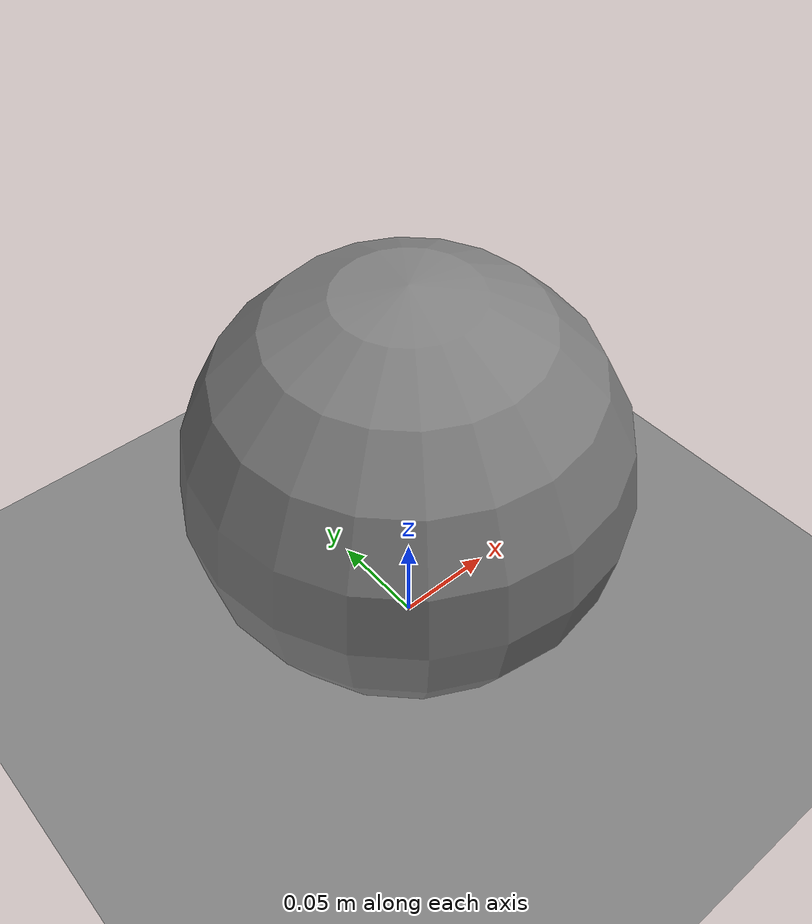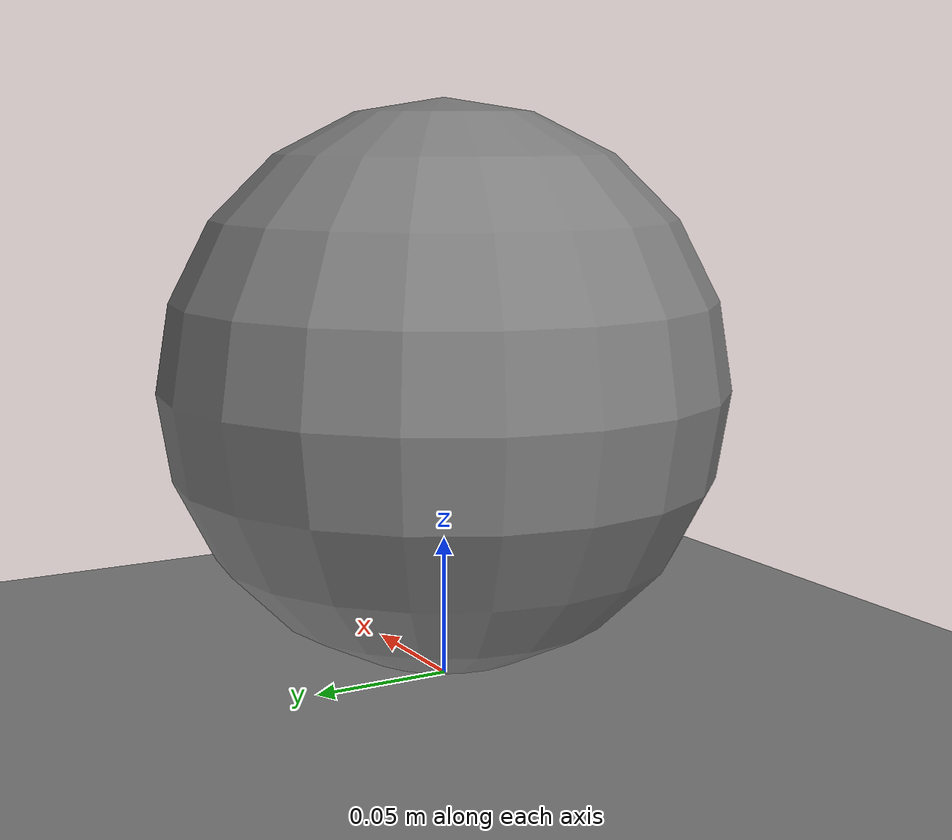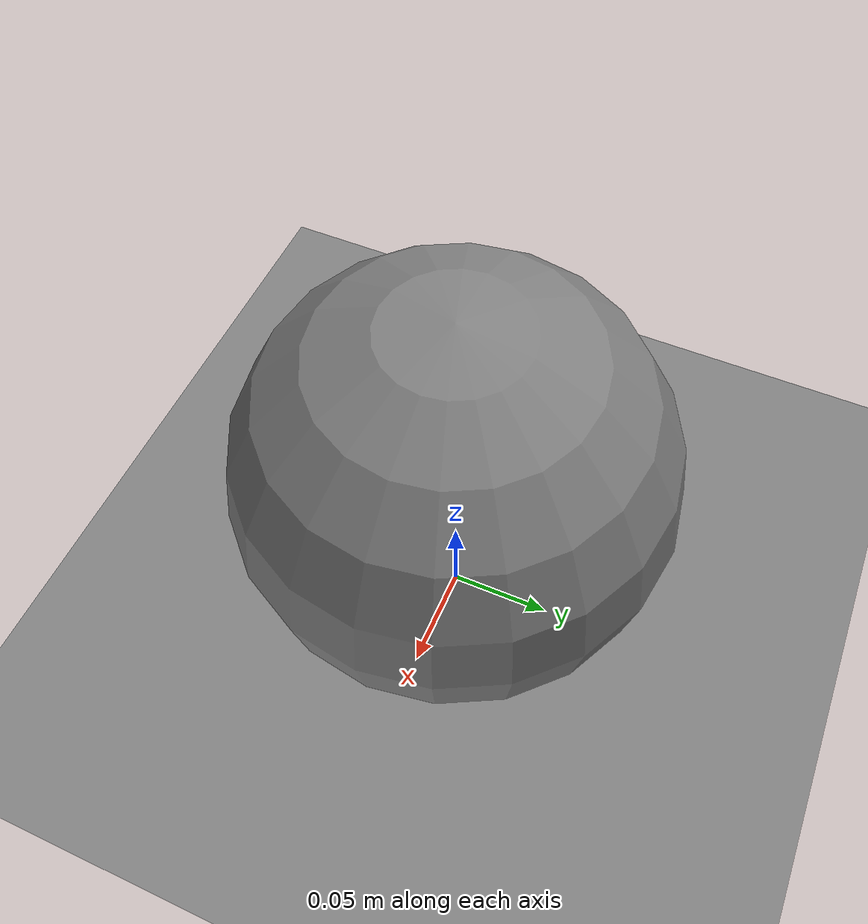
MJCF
<mujoco model="s31_k_zero">
            <option gravity="0 0 -9.81" timestep="0.002" solver="Newton"
                    cone="elliptic"/>
            <worldbody>
                <geom name="floor" type="plane" size="5 5 0.1"/>
                <body name="ball" pos="0 0 0.105">
                    <joint type="free"/>
                    <geom name="sphere" type="sphere" size="0.1" mass="1.0"/>
                </body>
            </worldbody>
            <contact>
                <pair geom1="floor" geom2="sphere"
                      condim="3" friction="1.0 1.0 0.005 0.001 0.001"
                      solref="0.02 1.0" solreffriction="0.1 0.5"/>
            </contact>
        </mujoco>
